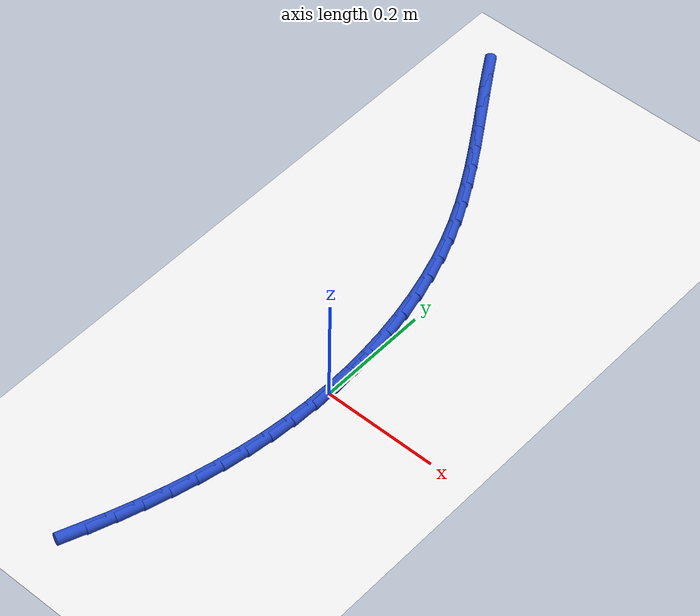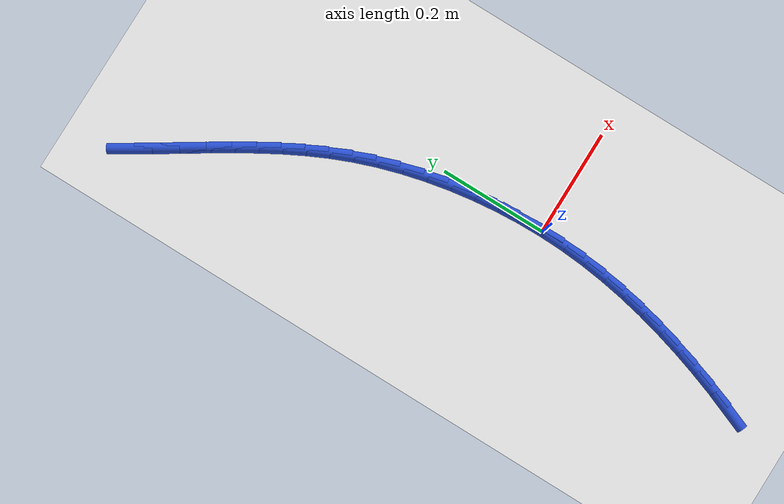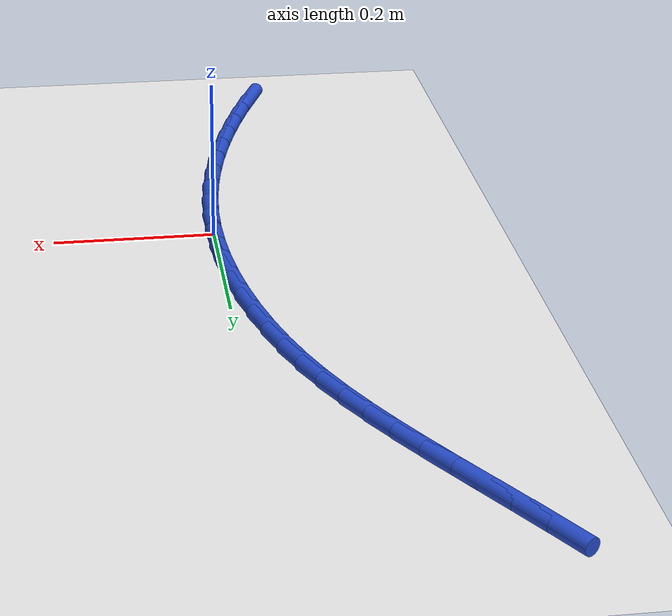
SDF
<sdf version="1.6">
 <world name="default">
  <model name="ground_plane">
   <static>1</static>
   <link name="link">
    <collision name="collision">
     <geometry><plane><normal>0 0 1</normal><size>100 100</size></plane></geometry>
     <surface><friction><ode><mu>100</mu><mu2>50</mu2></ode></friction></surface>
    </collision>
    <visual name="visual">
     <cast_shadows>0</cast_shadows>
     <geometry><plane><normal>0 0 1</normal><size>100 100</size></plane></geometry>
     <material>
      <script><uri>file://media/materials/scripts/gazebo.material</uri><name>Gazebo/WhiteGlow</name></script>
     </material>
    </visual>
   </link>
  </model>
  <model name="line">
   <link name="link_0">
    <pose>-1.214306433183765e-17 -2.0816681711721685e-17 0.01 0 1.57 -1.5514804229503802</pose>
    <collision name="collision">
     <geometry><cylinder><radius>0.01</radius><length>0.08</length></cylinder></geometry>
    </collision>
    <visual name="visual">
     <material>
      <script><name>Gazebo/Blue</name><uri>file://media/materials/scripts/gazebo.material</uri></script>
     </material>
     <geometry><cylinder><radius>0.01</radius><length>0.08</length></cylinder></geometry>
    </visual>
   </link>
   <link name="link_1">
    <pose>-0.0008678426783834466 0.04492333109464694 0.01 0 1.57 -1.5049221918385318</pose>
    <collision name="collision">
     <geometry><cylinder><radius>0.01</radius><length>0.08</length></cylinder></geometry>
    </collision>
    <visual name="visual">
     <material>
      <script><name>Gazebo/Blue</name><uri>file://media/materials/scripts/gazebo.material</uri></script>
     </material>
     <geometry><cylinder><radius>0.01</radius><length>0.08</length></cylinder></geometry>
    </visual>
   </link>
   <link name="link_2">
    <pose>-0.003843669696837276 0.09003240673459685 0.01 0 1.57 -1.4595242195928066</pose>
    <collision name="collision">
     <geometry><cylinder><radius>0.01</radius><length>0.08</length></cylinder></geometry>
    </collision>
    <visual name="visual">
     <material>
      <script><name>Gazebo/Blue</name><uri>file://media/materials/scripts/gazebo.material</uri></script>
     </material>
     <geometry><cylinder><radius>0.01</radius><length>0.08</length></cylinder></geometry>
    </visual>
   </link>
   <link name="link_3">
    <pose>-0.008873220678676763 0.13504616794314886 0.01 0 1.57 -1.4146096449957104</pose>
    <collision name="collision">
     <geometry><cylinder><radius>0.01</radius><length>0.08</length></cylinder></geometry>
    </collision>
    <visual name="visual">
     <material>
      <script><name>Gazebo/Blue</name><uri>file://media/materials/scripts/gazebo.material</uri></script>
     </material>
     <geometry><cylinder><radius>0.01</radius><length>0.08</length></cylinder></geometry>
    </visual>
   </link>
   <link name="link_4">
    <pose>-0.015902235247217178 0.17968355574360206 0.01 0 1.57 -1.3695072316632912</pose>
    <collision name="collision">
     <geometry><cylinder><radius>0.01</radius><length>0.08</length></cylinder></geometry>
    </collision>
    <visual name="visual">
     <material>
      <script><name>Gazebo/Blue</name><uri>file://media/materials/scripts/gazebo.material</uri></script>
     </material>
     <geometry><cylinder><radius>0.01</radius><length>0.08</length></cylinder></geometry>
    </visual>
   </link>
   <link name="link_5">
    <pose>-0.024876453025773772 0.22366351115925545 0.01 0 1.57 -1.323527463527113</pose>
    <collision name="collision">
     <geometry><cylinder><radius>0.01</radius><length>0.08</length></cylinder></geometry>
    </collision>
    <visual name="visual">
     <material>
      <script><name>Gazebo/Blue</name><uri>file://media/materials/scripts/gazebo.material</uri></script>
     </material>
     <geometry><cylinder><radius>0.01</radius><length>0.08</length></cylinder></geometry>
    </visual>
   </link>
   <link name="link_6">
    <pose>-0.0357416136376618 0.26670497521340814 0.01 0 1.57 -1.275936947140723</pose>
    <collision name="collision">
     <geometry><cylinder><radius>0.01</radius><length>0.08</length></cylinder></geometry>
    </collision>
    <visual name="visual">
     <material>
      <script><name>Gazebo/Blue</name><uri>file://media/materials/scripts/gazebo.material</uri></script>
     </material>
     <geometry><cylinder><radius>0.01</radius><length>0.08</length></cylinder></geometry>
    </visual>
   </link>
   <link name="link_7">
    <pose>-0.04844345670619654 0.30852688892935937 0.01 0 1.57 -1.2259362961388207</pose>
    <collision name="collision">
     <geometry><cylinder><radius>0.01</radius><length>0.08</length></cylinder></geometry>
    </collision>
    <visual name="visual">
     <material>
      <script><name>Gazebo/Blue</name><uri>file://media/materials/scripts/gazebo.material</uri></script>
     </material>
     <geometry><cylinder><radius>0.01</radius><length>0.08</length></cylinder></geometry>
    </visual>
   </link>
   <link name="link_8">
    <pose>-0.06292766682589343 0.3488487856903481 0.01 0 1.57 -1.1746973466063533</pose>
    <collision name="collision">
     <geometry><cylinder><radius>0.01</radius><length>0.08</length></cylinder></geometry>
    </collision>
    <visual name="visual">
     <material>
      <script><name>Gazebo/Blue</name><uri>file://media/materials/scripts/gazebo.material</uri></script>
     </material>
     <geometry><cylinder><radius>0.01</radius><length>0.08</length></cylinder></geometry>
    </visual>
   </link>
   <link name="link_9">
    <pose>-0.07912281599990902 0.3875744081233273 0.01 0 1.57 -1.1275314631234585</pose>
    <collision name="collision">
     <geometry><cylinder><radius>0.01</radius><length>0.08</length></cylinder></geometry>
    </collision>
    <visual name="visual">
     <material>
      <script><name>Gazebo/Blue</name><uri>file://media/materials/scripts/gazebo.material</uri></script>
     </material>
     <geometry><cylinder><radius>0.01</radius><length>0.08</length></cylinder></geometry>
    </visual>
   </link>
   <link name="link_10">
    <pose>-0.09691619333019154 0.4250518904643498 0.01 0 1.57 -1.0865978137405188</pose>
    <collision name="collision">
     <geometry><cylinder><radius>0.01</radius><length>0.08</length></cylinder></geometry>
    </collision>
    <visual name="visual">
     <material>
      <script><name>Gazebo/Blue</name><uri>file://media/materials/scripts/gazebo.material</uri></script>
     </material>
     <geometry><cylinder><radius>0.01</radius><length>0.08</length></cylinder></geometry>
    </visual>
   </link>
   <link name="link_11">
    <pose>-0.11618898727631548 0.46169503758311337 0.01 0 1.57 -1.0530089885697747</pose>
    <collision name="collision">
     <geometry><cylinder><radius>0.01</radius><length>0.08</length></cylinder></geometry>
    </collision>
    <visual name="visual">
     <material>
      <script><name>Gazebo/Blue</name><uri>file://media/materials/scripts/gazebo.material</uri></script>
     </material>
     <geometry><cylinder><radius>0.01</radius><length>0.08</length></cylinder></geometry>
    </visual>
   </link>
   <link name="link_12">
    <pose>-0.13682238629785515 0.49791765434931534 0.01 0 1.57 -1.0274247715743958</pose>
    <collision name="collision">
     <geometry><cylinder><radius>0.01</radius><length>0.08</length></cylinder></geometry>
    </collision>
    <visual name="visual">
     <material>
      <script><name>Gazebo/Blue</name><uri>file://media/materials/scripts/gazebo.material</uri></script>
     </material>
     <geometry><cylinder><radius>0.01</radius><length>0.08</length></cylinder></geometry>
    </visual>
   </link>
   <link name="link_13">
    <pose>-0.15869757885438512 0.5341335456326539 0.01 0 1.57 -1.0100631980832475</pose>
    <collision name="collision">
     <geometry><cylinder><radius>0.01</radius><length>0.08</length></cylinder></geometry>
    </collision>
    <visual name="visual">
     <material>
      <script><name>Gazebo/Blue</name><uri>file://media/materials/scripts/gazebo.material</uri></script>
     </material>
     <geometry><cylinder><radius>0.01</radius><length>0.08</length></cylinder></geometry>
    </visual>
   </link>
   <link name="link_14">
    <pose>-0.1816957534054798 0.5707565163028264 0.01 0 1.57 -1.000758250028578</pose>
    <collision name="collision">
     <geometry><cylinder><radius>0.01</radius><length>0.08</length></cylinder></geometry>
    </collision>
    <visual name="visual">
     <material>
      <script><name>Gazebo/Blue</name><uri>file://media/materials/scripts/gazebo.material</uri></script>
     </material>
     <geometry><cylinder><radius>0.01</radius><length>0.08</length></cylinder></geometry>
    </visual>
   </link>
   <link name="link_15">
    <pose>-0.2056980984107136 0.6082003712295306 0.01 0 1.57 -0.9990395615238913</pose>
    <collision name="collision">
     <geometry><cylinder><radius>0.01</radius><length>0.08</length></cylinder></geometry>
    </collision>
    <visual name="visual">
     <material>
      <script><name>Gazebo/Blue</name><uri>file://media/materials/scripts/gazebo.material</uri></script>
     </material>
     <geometry><cylinder><radius>0.01</radius><length>0.08</length></cylinder></geometry>
    </visual>
   </link>
   <link name="link_16">
    <pose>-0.2305858023296609 0.6468789152824641 0.01 0 1.57 -1.0042155455910822</pose>
    <collision name="collision">
     <geometry><cylinder><radius>0.01</radius><length>0.08</length></cylinder></geometry>
    </collision>
    <visual name="visual">
     <material>
      <script><name>Gazebo/Blue</name><uri>file://media/materials/scripts/gazebo.material</uri></script>
     </material>
     <geometry><cylinder><radius>0.01</radius><length>0.08</length></cylinder></geometry>
    </visual>
   </link>
   <link name="link_17">
    <pose>-0.2562400536218963 0.6872059533313248 0.01 0 1.57 -1.0154496720061035</pose>
    <collision name="collision">
     <geometry><cylinder><radius>0.01</radius><length>0.08</length></cylinder></geometry>
    </collision>
    <visual name="visual">
     <material>
      <script><name>Gazebo/Blue</name><uri>file://media/materials/scripts/gazebo.material</uri></script>
     </material>
     <geometry><cylinder><radius>0.01</radius><length>0.08</length></cylinder></geometry>
    </visual>
   </link>
   <link name="link_170">
    <pose>-0.09500178574417094 -0.435762077358546 0.01 0 1.57 1.1941844211741481</pose>
    <collision name="collision">
     <geometry><cylinder><radius>0.01</radius><length>0.08</length></cylinder></geometry>
    </collision>
    <visual name="visual">
     <material>
      <script><name>Gazebo/Blue</name><uri>file://media/materials/scripts/gazebo.material</uri></script>
     </material>
     <geometry><cylinder><radius>0.01</radius><length>0.08</length></cylinder></geometry>
    </visual>
   </link>
   <link name="link_171">
    <pose>-0.07804410891167995 -0.39288437668665255 0.01 0 1.57 1.2325029371782075</pose>
    <collision name="collision">
     <geometry><cylinder><radius>0.01</radius><length>0.08</length></cylinder></geometry>
    </collision>
    <visual name="visual">
     <material>
      <script><name>Gazebo/Blue</name><uri>file://media/materials/scripts/gazebo.material</uri></script>
     </material>
     <geometry><cylinder><radius>0.01</radius><length>0.08</length></cylinder></geometry>
    </visual>
   </link>
   <link name="link_172">
    <pose>-0.06278256068641597 -0.3495052613977243 0.01 0 1.57 1.2636174324005647</pose>
    <collision name="collision">
     <geometry><cylinder><radius>0.01</radius><length>0.08</length></cylinder></geometry>
    </collision>
    <visual name="visual">
     <material>
      <script><name>Gazebo/Blue</name><uri>file://media/materials/scripts/gazebo.material</uri></script>
     </material>
     <geometry><cylinder><radius>0.01</radius><length>0.08</length></cylinder></geometry>
    </visual>
   </link>
   <link name="link_173">
    <pose>-0.049016174170368944 -0.306108254995581 0.01 0 1.57 1.2949627844866387</pose>
    <collision name="collision">
     <geometry><cylinder><radius>0.01</radius><length>0.08</length></cylinder></geometry>
    </collision>
    <visual name="visual">
     <material>
      <script><name>Gazebo/Blue</name><uri>file://media/materials/scripts/gazebo.material</uri></script>
     </material>
     <geometry><cylinder><radius>0.01</radius><length>0.08</length></cylinder></geometry>
    </visual>
   </link>
   <link name="link_174">
    <pose>-0.03675249700284611 -0.26278116663465884 0.01 0 1.57 1.329434190401222</pose>
    <collision name="collision">
     <geometry><cylinder><radius>0.01</radius><length>0.08</length></cylinder></geometry>
    </collision>
    <visual name="visual">
     <material>
      <script><name>Gazebo/Blue</name><uri>file://media/materials/scripts/gazebo.material</uri></script>
     </material>
     <geometry><cylinder><radius>0.01</radius><length>0.08</length></cylinder></geometry>
    </visual>
   </link>
   <link name="link_175">
    <pose>-0.026085510285073995 -0.21944777392709267 0.01 0 1.57 1.3669258048334678</pose>
    <collision name="collision">
     <geometry><cylinder><radius>0.01</radius><length>0.08</length></cylinder></geometry>
    </collision>
    <visual name="visual">
     <material>
      <script><name>Gazebo/Blue</name><uri>file://media/materials/scripts/gazebo.material</uri></script>
     </material>
     <geometry><cylinder><radius>0.01</radius><length>0.08</length></cylinder></geometry>
    </visual>
   </link>
   <link name="link_176">
    <pose>-0.017109473061553186 -0.17603132701032145 0.01 0 1.57 1.4072530139176813</pose>
    <collision name="collision">
     <geometry><cylinder><radius>0.01</radius><length>0.08</length></cylinder></geometry>
    </collision>
    <visual name="visual">
     <material>
      <script><name>Gazebo/Blue</name><uri>file://media/materials/scripts/gazebo.material</uri></script>
     </material>
     <geometry><cylinder><radius>0.01</radius><length>0.08</length></cylinder></geometry>
    </visual>
   </link>
   <link name="link_177">
    <pose>-0.009918644376784766 -0.13245507602178705 0.01 0 1.57 1.4501565058220862</pose>
    <collision name="collision">
     <geometry><cylinder><radius>0.01</radius><length>0.08</length></cylinder></geometry>
    </collision>
    <visual name="visual">
     <material>
      <script><name>Gazebo/Blue</name><uri>file://media/materials/scripts/gazebo.material</uri></script>
     </material>
     <geometry><cylinder><radius>0.01</radius><length>0.08</length></cylinder></geometry>
    </visual>
   </link>
   <link name="link_178">
    <pose>-0.00460728327526927 -0.08864227109892861 0.01 0 1.57 1.4953015403302465</pose>
    <collision name="collision">
     <geometry><cylinder><radius>0.01</radius><length>0.08</length></cylinder></geometry>
    </collision>
    <visual name="visual">
     <material>
      <script><name>Gazebo/Blue</name><uri>file://media/materials/scripts/gazebo.material</uri></script>
     </material>
     <geometry><cylinder><radius>0.01</radius><length>0.08</length></cylinder></geometry>
    </visual>
   </link>
   <link name="link_179">
    <pose>-0.0012696488015074316 -0.044516162379186174 0.01 0 1.57 1.5422829816276615</pose>
    <collision name="collision">
     <geometry><cylinder><radius>0.01</radius><length>0.08</length></cylinder></geometry>
    </collision>
    <visual name="visual">
     <material>
      <script><name>Gazebo/Blue</name><uri>file://media/materials/scripts/gazebo.material</uri></script>
     </material>
     <geometry><cylinder><radius>0.01</radius><length>0.08</length></cylinder></geometry>
    </visual>
   </link>
   <link name="link_180">
    <pose>1.214306433183765e-17 1.5959455978986625e-16 0.01 0 1.57 -1.5509559544740088</pose>
    <collision name="collision">
     <geometry><cylinder><radius>0.01</radius><length>0.08</length></cylinder></geometry>
    </collision>
    <visual name="visual">
     <material>
      <script><name>Gazebo/Blue</name><uri>file://media/materials/scripts/gazebo.material</uri></script>
     </material>
     <geometry><cylinder><radius>0.01</radius><length>0.08</length></cylinder></geometry>
    </visual>
   </link>
   <link name="link_181">
    <pose>-0.0008925959152476654 0.04498296590119041 0.01 0 1.57 -1.5509559544740095</pose>
    <collision name="collision">
     <geometry><cylinder><radius>0.01</radius><length>0.08</length></cylinder></geometry>
    </collision>
    <visual name="visual">
     <material>
      <script><name>Gazebo/Blue</name><uri>file://media/materials/scripts/gazebo.material</uri></script>
     </material>
     <geometry><cylinder><radius>0.01</radius><length>0.08</length></cylinder></geometry>
    </visual>
   </link>
  </model>
 </world>
</sdf>
